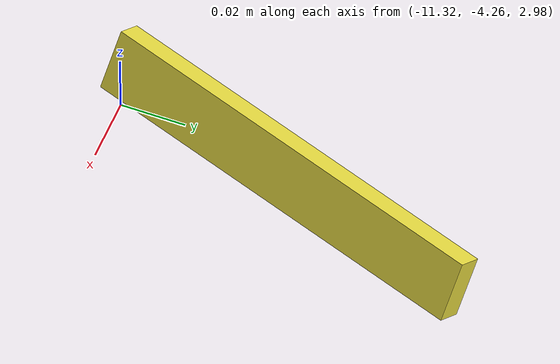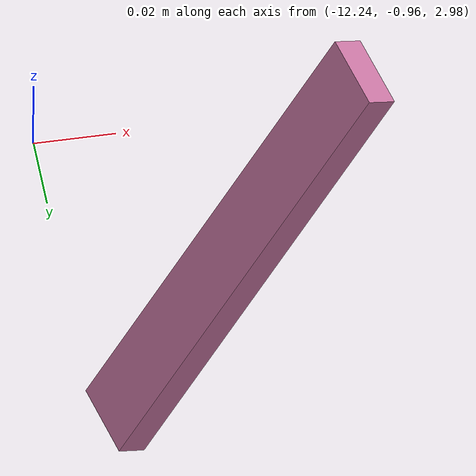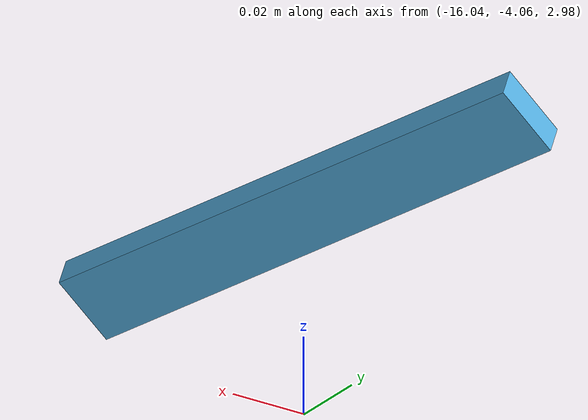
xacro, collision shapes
<?xml version="1.0"?>
<robot name="robot_with_multiplecamera" xmlns:xacro="http://ros.org/wiki/xacro">
    <link name="world"/>
    <!-- Import macro for realsense-RS200 camera-->
    <xacro:include filename="$(find realsense2_description)/urdf/realsense.macro.xacro"/>

    <xacro:realsense-rs200 prefix="realsense1" parent="world">
        <origin xyz="-16.0 -4.0 3" rpy="0.2 1.1 0.5" />
    </xacro:realsense-rs200>
    <xacro:realsense-rs200 prefix="realsense2" parent="world">
        <origin xyz="-12.2 -0.9 3" rpy="0 0.5 -2.5" />
    </xacro:realsense-rs200>
    <xacro:realsense-rs200 prefix="realsense3" parent="world">
        <origin xyz="-11.3 -4.2 3" rpy="0 0.5 2.8" />
    </xacro:realsense-rs200>
</robot>

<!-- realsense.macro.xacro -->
<robot xmlns:xacro="http://ros.org/wiki/xacro">
<xacro:macro name="realsense-rs200" params="prefix parent *origin">

    <!-- Camera link -->
    <link name="${prefix}rs200_camera">
        <visual>
            <origin rpy="0 0 0" xyz="0 0 0"/>
            <geometry>
                <mesh filename="package://realsense2_description/models/realsense_camera/meshes/realsense.dae"/>
            </geometry>
        </visual>
        <collision>
            <geometry>
                <box size="0.0078 0.130 0.0192"/>
            </geometry>
        </collision>
        <inertial>
            <mass value="0.0615752"/>
            <origin rpy="0 0 0" xyz="0 0 0"/>
            <inertia ixx="9.108e-05"
                     ixy="0"
                     ixz="0"
                     iyy="2.51e-06"
                     iyz="0"
                     izz="8.931e-05"
            />
        </inertial>
    </link>

    <!-- Connect camera to parent frame-->
    <joint name="${prefix}realsense_joint" type="fixed">
        <parent link="${parent}"/>
        <child link="${prefix}rs200_camera"/>
        <xacro:insert_block name="origin"/>
    </joint>

    <!-- Virtual links representing the cameras positons and orientations-->
    <link name="${prefix}color" />
    <link name="${prefix}depth" />
    <link name="${prefix}ired1" />
    <link name="${prefix}ired2" />

    <!-- Joints positioning the virtual links with respect to the camera main link-->
    <joint name="${prefix}color_joint" type="fixed">
        <parent link="${prefix}rs200_camera" />
        <child link="${prefix}color" />
        <!-- The default position is change since in Rviz the cloud depth axis is Z not X-->
        <origin xyz="0 -0.046 0.004" rpy="${pi/2} ${pi} ${pi/2}"/>
    </joint>

    <joint name="${prefix}depth_joint" type="fixed">
        <parent link="${prefix}rs200_camera" />
        <child link="${prefix}depth" />
        <origin xyz="0 -0.03 0.004" rpy="0 0 0"/>
    </joint>

    <joint name="${prefix}ired1_joint" type="fixed">
        <parent link="${prefix}rs200_camera" />
        <child link="${prefix}ired1" />
        <origin xyz="0 -0.06 0.004" rpy="0 0 0"/>
    </joint>

    <joint name="${prefix}ired2_joint" type="fixed">
        <parent link="${prefix}rs200_camera" />
        <child link="${prefix}ired2" />
        <origin xyz="0 0.01 0.004" rpy="0 0 0"/>
    </joint>

<!-- GAZEBO DEFINITIONS ***************************************-->

    <!-- Load plugin to the model ("robot" in urdf format)-->
    <gazebo>
        <plugin name="${prefix}r200" filename="librealsense_gazebo_plugin.so">
            <prefix>${prefix}</prefix>
            <depthUpdateRate>30.0</depthUpdateRate>
            <colorUpdateRate>30.0</colorUpdateRate>
            <infraredUpdateRate>30.0</infraredUpdateRate>
            <depthTopicName>${prefix}/depth/image</depthTopicName>
            <depthCameraInfoTopicName>${prefix}/depth/camera_info</depthCameraInfoTopicName>
            <colorTopicName>${prefix}/color/image</colorTopicName>
            <colorCameraInfoTopicName>${prefix}/color/camera_info</colorCameraInfoTopicName>
            <infrared1TopicName>${prefix}/ir1/image</infrared1TopicName>
            <infrared1CameraInfoTopicName>${prefix}/ir1/camera_info</infrared1CameraInfoTopicName>
            <infrared2TopicName>${prefix}/ir2/image</infrared2TopicName>
            <infrared2CameraInfoTopicName>${prefix}/ir2/camera_info</infrared2CameraInfoTopicName>
            <colorOpticalframeName>${prefix}_color_optical_frame</colorOpticalframeName>
            <depthOpticalframeName>${prefix}_depth_optical_frame</depthOpticalframeName>
            <infrared1OpticalframeName>${prefix}_infrared1_optical_frame</infrared1OpticalframeName>
            <infrared2OpticalframeName>${prefix}_infrared2_optical_frame</infrared2OpticalframeName>
            <rangeMinDepth>0.2</rangeMinDepth>
            <rangeMaxDepth>10.0</rangeMaxDepth>
            <pointCloud>false</pointCloud>
            <pointCloudTopicName>${prefix}/depth/points</pointCloudTopicName>
            <pointCloudCutoff>0.5</pointCloudCutoff>
            <pointCloudCutoffMax>3.0</pointCloudCutoffMax>
        </plugin>
    </gazebo>

    <!-- Load parameters to model's main link-->
    <gazebo reference="${prefix}rs200_camera">
        <self_collide>0</self_collide>
        <enable_wind>0</enable_wind>
        <kinematic>0</kinematic>
        <gravity>1</gravity>
        <mu2>1</mu2>
        <fdir1>0 0 0</fdir1>
        <kp>1e+13</kp>
        <kd>1</kd>

        <sensor name="${prefix}color" type="camera">
            <pose frame="">0 -0.046 0.004 0 0 0</pose>
            <camera name="${prefix}rs200_camera">
            <horizontal_fov>1.047</horizontal_fov>
            <image>
                <width>640</width>
                <height>480</height>
                <format>RGB_INT8</format>
            </image>
            <clip>
                <near>0.1</near>
                <far>100</far>
            </clip>
            <noise>
                <type>gaussian</type>
                <mean>0.0</mean>
                <stddev>0.007</stddev>
            </noise>
            </camera>
            <always_on>1</always_on>
            <update_rate>60</update_rate>
            <visualize>1</visualize>
        </sensor>
        <sensor name="${prefix}ired1" type="camera">
            <pose frame="">0 -0.06 0.004 0 0 0</pose>
            <camera name="${prefix}rs200_camera">
            <horizontal_fov>1.047</horizontal_fov>
            <image>
                <width>640</width>
                <height>480</height>
                <format>L_INT8</format>
            </image>
            <clip>
                <near>0.1</near>
                <far>100</far>
            </clip>
            <noise>
                <type>gaussian</type>
                <mean>0.0</mean>
                <stddev>0.05</stddev>
            </noise>
            </camera>
            <always_on>1</always_on>
            <update_rate>60</update_rate>
            <visualize>0</visualize>
        </sensor>
        <sensor name="${prefix}ired2" type="camera">
            <pose frame="">0 0.01 0.004 0 0 0</pose>
            <camera name="${prefix}rs200_camera">
            <horizontal_fov>1.047</horizontal_fov>
            <image>
                <width>640</width>
                <height>480</height>
                <format>L_INT8</format>
            </image>
            <clip>
                <near>0.1</near>
                <far>100</far>
            </clip>
            <noise>
                <type>gaussian</type>
                <mean>0.0</mean>
                <stddev>0.05</stddev>
            </noise>
            </camera>
            <always_on>1</always_on>
            <update_rate>60</update_rate>
            <visualize>0</visualize>
        </sensor>
        <sensor name="${prefix}depth" type="depth">
            <pose frame="">0 -0.03 0.004 0 0 0</pose>
            <camera name="${prefix}rs200_camera">
            <horizontal_fov>1.047</horizontal_fov>
            <image>
                    <width>640</width>
                    <height>480</height>
            </image>
            <clip>
                    <near>0.1</near>
                    <far>100</far>
            </clip>
            <noise>
                    <type>gaussian</type>
                    <mean>0.0</mean>
                    <stddev>0.100</stddev>
            </noise>
            </camera>
            <always_on>1</always_on>
            <update_rate>60</update_rate>
            <visualize>0</visualize>
        </sensor>
    </gazebo>

</xacro:macro>
</robot>
